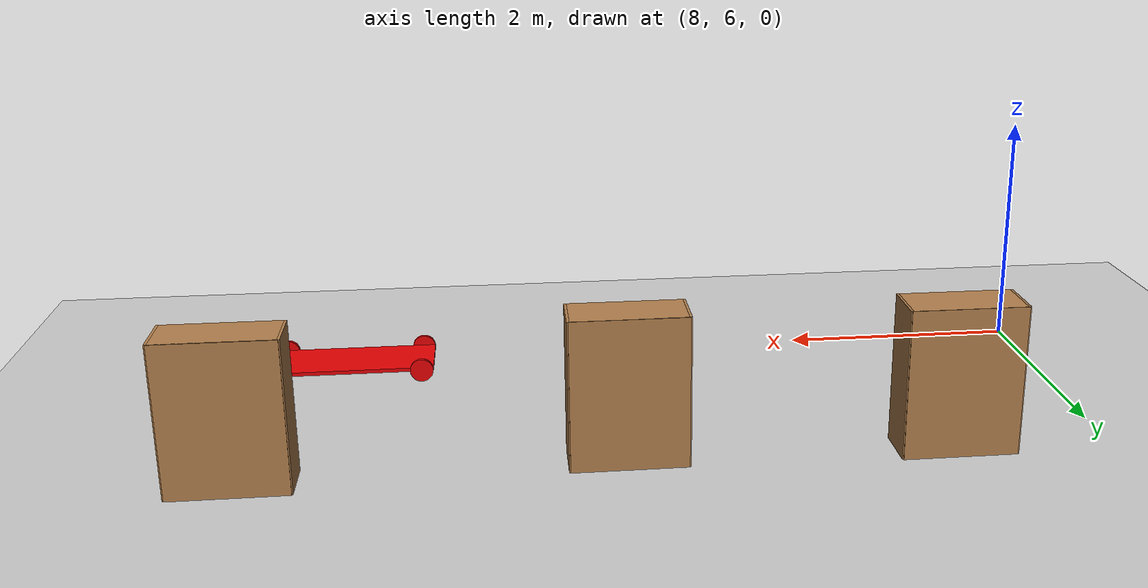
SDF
<sdf version="1.6">
 <world name="default">
  <model name="ground_plane">
   <static>1</static>
   <link name="link">
    <collision name="collision">
     <geometry><plane><normal>0 0 1</normal><size>100 100</size></plane></geometry>
     <surface><friction><ode><mu>100</mu><mu2>50</mu2></ode></friction></surface>
    </collision>
    <visual name="visual">
     <cast_shadows>0</cast_shadows>
     <geometry><plane><normal>0 0 1</normal><size>100 100</size></plane></geometry>
     <material>
      <script><uri>file://media/materials/scripts/gazebo.material</uri><name>Gazebo/Grey</name></script>
     </material>
    </visual>
   </link>
  </model>
  <model name="cart_0">
   <link name="link_0">
    <pose>0.002043 -1e-06 0 0 -0 0</pose>
    <inertial>
     <mass>0.0253075</mass>
     <inertia>
      <ixx>0.00062948</ixx>
      <ixy>0</ixy>
      <ixz>0</ixz>
      <iyy>0.00421325</iyy>
      <iyz>0</iyz>
      <izz>0.00483818</izz>
     </inertia>
    </inertial>
    <visual name="visual">
     <geometry><box><size>1.41306 0.545344 0.032853</size></box></geometry>
     <material>
      <lighting>1</lighting>
      <script><uri>file://media/materials/scripts/gazebo.material</uri><name>Gazebo/Grey</name></script>
      <ambient>0.9 0.002 0 1</ambient>
      <diffuse>0.9 0.002 0.01 0.9</diffuse>
      <specular>0.01 0.01 0.01 1</specular>
      <emissive>0 0 0 1</emissive>
      <shader type="vertex"><normal_map>__default__</normal_map></shader>
     </material>
    </visual>
    <collision name="collision">
     <geometry><box><size>1.41306 0.545344 0.032853</size></box></geometry>
     <surface>
      <friction>
       <ode><mu>1</mu><mu2>1</mu2><fdir1>0 0 0</fdir1><slip1>0</slip1><slip2>0</slip2></ode>
       <torsional>
        <coefficient>1</coefficient>
        <patch_radius>0</patch_radius>
        <surface_radius>0</surface_radius>
        <use_patch_radius>1</use_patch_radius>
        <ode><slip>0</slip></ode>
       </torsional>
      </friction>
      <bounce><restitution_coefficient>0</restitution_coefficient><threshold>1e+06</threshold></bounce>
      <contact>
       <collide_without_contact>0</collide_without_contact>
       <collide_without_contact_bitmask>1</collide_without_contact_bitmask>
       <collide_bitmask>1</collide_bitmask>
       <ode>
        <soft_cfm>0</soft_cfm>
        <soft_erp>0.2</soft_erp>
        <kp>1e+13</kp>
        <kd>1</kd>
        <max_vel>0.01</max_vel>
        <min_depth>0</min_depth>
       </ode>
       <bullet>
        <split_impulse>1</split_impulse>
        <split_impulse_penetration_threshold>-0.01</split_impulse_penetration_threshold>
        <soft_cfm>0</soft_cfm>
        <soft_erp>0.2</soft_erp>
        <kp>1e+13</kp>
        <kd>1</kd>
       </bullet>
      </contact>
     </surface>
    </collision>
   </link>
   <link name="link_1">
    <pose>0.598738 -0.289052 0 -1.55276 0 0</pose>
    <inertial>
     <mass>0.00115815</mass>
     <inertia>
      <ixx>2.95396e-06</ixx>
      <ixy>0</ixy>
      <ixz>0</ixz>
      <iyy>2.95396e-06</iyy>
      <iyz>0</iyz>
      <izz>5.7496e-06</izz>
     </inertia>
    </inertial>
    <visual name="visual">
     <geometry><cylinder><radius>0.0996172</radius><length>0.0291706</length></cylinder></geometry>
     <material>
      <lighting>1</lighting>
      <script><uri>file://media/materials/scripts/gazebo.material</uri><name>Gazebo/Grey</name></script>
      <ambient>0.9 0.002 0 1</ambient>
      <diffuse>0.9 0.002 0.01 0.9</diffuse>
      <specular>0.01 0.01 0.01 1</specular>
      <emissive>0 0 0 1</emissive>
      <shader type="vertex"><normal_map>__default__</normal_map></shader>
     </material>
    </visual>
    <collision name="collision">
     <geometry><cylinder><radius>0.099617</radius><length>0.029171</length></cylinder></geometry>
     <surface>
      <friction>
       <ode><mu>1</mu><mu2>1</mu2><fdir1>0 0 0</fdir1><slip1>0</slip1><slip2>0</slip2></ode>
       <torsional>
        <coefficient>1</coefficient>
        <patch_radius>0</patch_radius>
        <surface_radius>0</surface_radius>
        <use_patch_radius>1</use_patch_radius>
        <ode><slip>0</slip></ode>
       </torsional>
      </friction>
      <bounce><restitution_coefficient>0</restitution_coefficient><threshold>1e+06</threshold></bounce>
      <contact>
       <collide_without_contact>0</collide_without_contact>
       <collide_without_contact_bitmask>1</collide_without_contact_bitmask>
       <collide_bitmask>1</collide_bitmask>
       <ode>
        <soft_cfm>0</soft_cfm>
        <soft_erp>0.2</soft_erp>
        <kp>1e+13</kp>
        <kd>1</kd>
        <max_vel>0.01</max_vel>
        <min_depth>0</min_depth>
       </ode>
       <bullet>
        <split_impulse>1</split_impulse>
        <split_impulse_penetration_threshold>-0.01</split_impulse_penetration_threshold>
        <soft_cfm>0</soft_cfm>
        <soft_erp>0.2</soft_erp>
        <kp>1e+13</kp>
        <kd>1</kd>
       </bullet>
      </contact>
     </surface>
    </collision>
   </link>
   <link name="link_1_clone">
    <pose>-0.604867 0.289051 0 -1.55276 0 0</pose>
    <inertial>
     <mass>0.00115815</mass>
     <inertia>
      <ixx>2.95396e-06</ixx>
      <ixy>0</ixy>
      <ixz>0</ixz>
      <iyy>2.95396e-06</iyy>
      <iyz>0</iyz>
      <izz>5.7496e-06</izz>
     </inertia>
    </inertial>
    <visual name="visual">
     <geometry><cylinder><radius>0.0996172</radius><length>0.0291706</length></cylinder></geometry>
     <material>
      <lighting>1</lighting>
      <script><uri>file://media/materials/scripts/gazebo.material</uri><name>Gazebo/Grey</name></script>
      <ambient>0.9 0.002 0 1</ambient>
      <diffuse>0.9 0.002 0.01 0.9</diffuse>
      <specular>0.01 0.01 0.01 1</specular>
      <emissive>0 0 0 1</emissive>
      <shader type="vertex"><normal_map>__default__</normal_map></shader>
     </material>
    </visual>
    <collision name="collision">
     <geometry><cylinder><radius>0.099617</radius><length>0.029171</length></cylinder></geometry>
     <surface>
      <friction>
       <ode><mu>1</mu><mu2>1</mu2><fdir1>0 0 0</fdir1><slip1>0</slip1><slip2>0</slip2></ode>
       <torsional>
        <coefficient>1</coefficient>
        <patch_radius>0</patch_radius>
        <surface_radius>0</surface_radius>
        <use_patch_radius>1</use_patch_radius>
        <ode><slip>0</slip></ode>
       </torsional>
      </friction>
      <bounce><restitution_coefficient>0</restitution_coefficient><threshold>1e+06</threshold></bounce>
      <contact>
       <collide_without_contact>0</collide_without_contact>
       <collide_without_contact_bitmask>1</collide_without_contact_bitmask>
       <collide_bitmask>1</collide_bitmask>
       <ode>
        <soft_cfm>0</soft_cfm>
        <soft_erp>0.2</soft_erp>
        <kp>1e+13</kp>
        <kd>1</kd>
        <max_vel>0.01</max_vel>
        <min_depth>0</min_depth>
       </ode>
       <bullet>
        <split_impulse>1</split_impulse>
        <split_impulse_penetration_threshold>-0.01</split_impulse_penetration_threshold>
        <soft_cfm>0</soft_cfm>
        <soft_erp>0.2</soft_erp>
        <kp>1e+13</kp>
        <kd>1</kd>
       </bullet>
      </contact>
     </surface>
    </collision>
   </link>
   <link name="link_1_clone_0">
    <pose>-0.604867 -0.289052 0 -1.55276 0 0</pose>
    <inertial>
     <mass>0.00115815</mass>
     <inertia>
      <ixx>2.95396e-06</ixx>
      <ixy>0</ixy>
      <ixz>0</ixz>
      <iyy>2.95396e-06</iyy>
      <iyz>0</iyz>
      <izz>5.7496e-06</izz>
     </inertia>
    </inertial>
    <visual name="visual">
     <geometry><cylinder><radius>0.0996172</radius><length>0.0291706</length></cylinder></geometry>
     <material>
      <lighting>1</lighting>
      <script><uri>file://media/materials/scripts/gazebo.material</uri><name>Gazebo/Grey</name></script>
      <ambient>0.9 0.002 0 1</ambient>
      <diffuse>0.9 0.002 0.01 0.9</diffuse>
      <specular>0.01 0.01 0.01 1</specular>
      <emissive>0 0 0 1</emissive>
      <shader type="vertex"><normal_map>__default__</normal_map></shader>
     </material>
    </visual>
    <collision name="collision">
     <geometry><cylinder><radius>0.099617</radius><length>0.029171</length></cylinder></geometry>
     <surface>
      <friction>
       <ode><mu>1</mu><mu2>1</mu2><fdir1>0 0 0</fdir1><slip1>0</slip1><slip2>0</slip2></ode>
       <torsional>
        <coefficient>1</coefficient>
        <patch_radius>0</patch_radius>
        <surface_radius>0</surface_radius>
        <use_patch_radius>1</use_patch_radius>
        <ode><slip>0</slip></ode>
       </torsional>
      </friction>
      <bounce><restitution_coefficient>0</restitution_coefficient><threshold>1e+06</threshold></bounce>
      <contact>
       <collide_without_contact>0</collide_without_contact>
       <collide_without_contact_bitmask>1</collide_without_contact_bitmask>
       <collide_bitmask>1</collide_bitmask>
       <ode>
        <soft_cfm>0</soft_cfm>
        <soft_erp>0.2</soft_erp>
        <kp>1e+13</kp>
        <kd>1</kd>
        <max_vel>0.01</max_vel>
        <min_depth>0</min_depth>
       </ode>
       <bullet>
        <split_impulse>1</split_impulse>
        <split_impulse_penetration_threshold>-0.01</split_impulse_penetration_threshold>
        <soft_cfm>0</soft_cfm>
        <soft_erp>0.2</soft_erp>
        <kp>1e+13</kp>
        <kd>1</kd>
       </bullet>
      </contact>
     </surface>
    </collision>
   </link>
   <link name="link_1_clone_1">
    <pose>0.608953 0.289051 0 -1.55276 0 0</pose>
    <inertial>
     <mass>0.00115815</mass>
     <inertia>
      <ixx>2.95396e-06</ixx>
      <ixy>0</ixy>
      <ixz>0</ixz>
      <iyy>2.95396e-06</iyy>
      <iyz>0</iyz>
      <izz>5.7496e-06</izz>
     </inertia>
    </inertial>
    <visual name="visual">
     <geometry><cylinder><radius>0.0996172</radius><length>0.0291706</length></cylinder></geometry>
     <material>
      <lighting>1</lighting>
      <script><uri>file://media/materials/scripts/gazebo.material</uri><name>Gazebo/Grey</name></script>
      <ambient>0.9 0.002 0 1</ambient>
      <diffuse>0.9 0.002 0.01 0.9</diffuse>
      <specular>0.01 0.01 0.01 1</specular>
      <emissive>0 0 0 1</emissive>
      <shader type="vertex"><normal_map>__default__</normal_map></shader>
     </material>
    </visual>
    <collision name="collision">
     <geometry><cylinder><radius>0.099617</radius><length>0.029171</length></cylinder></geometry>
     <surface>
      <friction>
       <ode><mu>1</mu><mu2>1</mu2><fdir1>0 0 0</fdir1><slip1>0</slip1><slip2>0</slip2></ode>
       <torsional>
        <coefficient>1</coefficient>
        <patch_radius>0</patch_radius>
        <surface_radius>0</surface_radius>
        <use_patch_radius>1</use_patch_radius>
        <ode><slip>0</slip></ode>
       </torsional>
      </friction>
      <bounce><restitution_coefficient>0</restitution_coefficient><threshold>1e+06</threshold></bounce>
      <contact>
       <collide_without_contact>0</collide_without_contact>
       <collide_without_contact_bitmask>1</collide_without_contact_bitmask>
       <collide_bitmask>1</collide_bitmask>
       <ode>
        <soft_cfm>0</soft_cfm>
        <soft_erp>0.2</soft_erp>
        <kp>1e+13</kp>
        <kd>1</kd>
        <max_vel>0.01</max_vel>
        <min_depth>0</min_depth>
       </ode>
       <bullet>
        <split_impulse>1</split_impulse>
        <split_impulse_penetration_threshold>-0.01</split_impulse_penetration_threshold>
        <soft_cfm>0</soft_cfm>
        <soft_erp>0.2</soft_erp>
        <kp>1e+13</kp>
        <kd>1</kd>
       </bullet>
      </contact>
     </surface>
    </collision>
   </link>
   <joint name="link_0_JOINT_0" type="revolute">
    <parent>link_0</parent>
    <child>link_1</child>
    <axis>
     <xyz>0 0 1</xyz>
     <use_parent_model_frame>0</use_parent_model_frame>
     <limit>
      <lower>-1.79769e+308</lower>
      <upper>1.79769e+308</upper>
      <effort>-1</effort>
      <velocity>-1</velocity>
     </limit>
     <dynamics>
      <spring_reference>0</spring_reference>
      <spring_stiffness>0</spring_stiffness>
      <damping>0</damping>
     </dynamics>
    </axis>
    <physics>
     <ode><limit><cfm>0</cfm><erp>0.2</erp></limit><suspension><cfm>0</cfm><erp>0.2</erp></suspension></ode>
    </physics>
   </joint>
   <joint name="link_0_JOINT_1" type="revolute">
    <parent>link_0</parent>
    <child>link_1_clone_1</child>
    <axis>
     <xyz>0 0 1</xyz>
     <use_parent_model_frame>0</use_parent_model_frame>
     <limit>
      <lower>-1.79769e+308</lower>
      <upper>1.79769e+308</upper>
      <effort>-1</effort>
      <velocity>-1</velocity>
     </limit>
     <dynamics>
      <spring_reference>0</spring_reference>
      <spring_stiffness>0</spring_stiffness>
      <damping>0</damping>
     </dynamics>
    </axis>
    <physics>
     <ode><limit><cfm>0</cfm><erp>0.2</erp></limit><suspension><cfm>0</cfm><erp>0.2</erp></suspension></ode>
    </physics>
   </joint>
   <joint name="link_0_JOINT_2" type="revolute">
    <parent>link_0</parent>
    <child>link_1_clone_0</child>
    <axis>
     <xyz>0 0 1</xyz>
     <use_parent_model_frame>0</use_parent_model_frame>
     <limit>
      <lower>-1.79769e+308</lower>
      <upper>1.79769e+308</upper>
      <effort>-1</effort>
      <velocity>-1</velocity>
     </limit>
     <dynamics>
      <spring_reference>0</spring_reference>
      <spring_stiffness>0</spring_stiffness>
      <damping>0</damping>
     </dynamics>
    </axis>
    <physics>
     <ode><limit><cfm>0</cfm><erp>0.2</erp></limit><suspension><cfm>0</cfm><erp>0.2</erp></suspension></ode>
    </physics>
   </joint>
   <joint name="link_0_JOINT_3" type="revolute">
    <parent>link_0</parent>
    <child>link_1_clone</child>
    <axis>
     <xyz>0 0 1</xyz>
     <use_parent_model_frame>0</use_parent_model_frame>
     <limit>
      <lower>-1.79769e+308</lower>
      <upper>1.79769e+308</upper>
      <effort>-1</effort>
      <velocity>-1</velocity>
     </limit>
     <dynamics>
      <spring_reference>0</spring_reference>
      <spring_stiffness>0</spring_stiffness>
      <damping>0</damping>
     </dynamics>
    </axis>
    <physics>
     <ode><limit><cfm>0</cfm><erp>0.2</erp></limit><suspension><cfm>0</cfm><erp>0.2</erp></suspension></ode>
    </physics>
   </joint>
   <static>0</static>
   <pose>14.0056 6.29999 0.099856 1.4e-05 5e-06 0.000454</pose>
  </model>
  <model name="bookshelf">
   <static>1</static>
   <link name="link">
    <inertial><mass>1</mass></inertial>
    <collision name="back">
     <pose>0 0.005 0.6 0 -0 0</pose>
     <geometry><box><size>0.9 0.01 1.2</size></box></geometry>
    </collision>
    <visual name="visual1">
     <pose>0 0.005 0.6 0 -0 0</pose>
     <geometry><box><size>0.9 0.01 1.2</size></box></geometry>
     <material>
      <script><uri>file://media/materials/scripts/gazebo.material</uri><name>Gazebo/Wood</name></script>
     </material>
    </visual>
    <collision name="left_side">
     <pose>0.45 -0.195 0.6 0 -0 0</pose>
     <geometry><box><size>0.02 0.4 1.2</size></box></geometry>
    </collision>
    <visual name="visual2">
     <pose>0.45 -0.195 0.6 0 -0 0</pose>
     <geometry><box><size>0.02 0.4 1.2</size></box></geometry>
     <material>
      <script><uri>file://media/materials/scripts/gazebo.material</uri><name>Gazebo/Wood</name></script>
     </material>
    </visual>
    <collision name="right_side">
     <pose>-0.45 -0.195 0.6 0 -0 0</pose>
     <geometry><box><size>0.02 0.4 1.2</size></box></geometry>
    </collision>
    <visual name="visual3">
     <pose>-0.45 -0.195 0.6 0 -0 0</pose>
     <geometry><box><size>0.02 0.4 1.2</size></box></geometry>
     <material>
      <script><uri>file://media/materials/scripts/gazebo.material</uri><name>Gazebo/Wood</name></script>
     </material>
    </visual>
    <collision name="bottom">
     <pose>0 -0.195 0.03 0 -0 0</pose>
     <geometry><box><size>0.88 0.4 0.06</size></box></geometry>
    </collision>
    <visual name="visual4">
     <pose>0 -0.195 0.03 0 -0 0</pose>
     <geometry><box><size>0.88 0.4 0.06</size></box></geometry>
     <material>
      <script><uri>file://media/materials/scripts/gazebo.material</uri><name>Gazebo/Wood</name></script>
     </material>
    </visual>
    <collision name="top">
     <pose>0 -0.195 1.19 0 -0 0</pose>
     <geometry><box><size>0.88 0.4 0.02</size></box></geometry>
    </collision>
    <visual name="visual5">
     <pose>0 -0.195 1.19 0 -0 0</pose>
     <geometry><box><size>0.88 0.4 0.02</size></box></geometry>
     <material>
      <script><uri>file://media/materials/scripts/gazebo.material</uri><name>Gazebo/Wood</name></script>
     </material>
    </visual>
    <collision name="low_shelf">
     <pose>0 -0.195 0.43 0 -0 0</pose>
     <geometry><box><size>0.88 0.4 0.02</size></box></geometry>
    </collision>
    <visual name="visual6">
     <pose>0 -0.195 0.43 0 -0 0</pose>
     <geometry><box><size>0.88 0.4 0.02</size></box></geometry>
     <material>
      <script><uri>file://media/materials/scripts/gazebo.material</uri><name>Gazebo/Wood</name></script>
     </material>
    </visual>
    <collision name="high_shelf">
     <pose>0 -0.195 0.8 0 -0 0</pose>
     <geometry><box><size>0.88 0.4 0.02</size></box></geometry>
    </collision>
    <visual name="visual7">
     <pose>0 -0.195 0.8 0 -0 0</pose>
     <geometry><box><size>0.88 0.4 0.02</size></box></geometry>
     <material>
      <script><uri>file://media/materials/scripts/gazebo.material</uri><name>Gazebo/Wood</name></script>
     </material>
    </visual>
   </link>
   <pose>14.697 8.63776 0 0 -0 0</pose>
  </model>
  <model name="bookshelf_clone">
   <static>1</static>
   <link name="link">
    <inertial><mass>1</mass></inertial>
    <collision name="back">
     <pose>0 0.005 0.6 0 -0 0</pose>
     <geometry><box><size>0.9 0.01 1.2</size></box></geometry>
    </collision>
    <visual name="visual1">
     <pose>0 0.005 0.6 0 -0 0</pose>
     <geometry><box><size>0.9 0.01 1.2</size></box></geometry>
     <material>
      <script><uri>file://media/materials/scripts/gazebo.material</uri><name>Gazebo/Wood</name></script>
     </material>
    </visual>
    <collision name="left_side">
     <pose>0.45 -0.195 0.6 0 -0 0</pose>
     <geometry><box><size>0.02 0.4 1.2</size></box></geometry>
    </collision>
    <visual name="visual2">
     <pose>0.45 -0.195 0.6 0 -0 0</pose>
     <geometry><box><size>0.02 0.4 1.2</size></box></geometry>
     <material>
      <script><uri>file://media/materials/scripts/gazebo.material</uri><name>Gazebo/Wood</name></script>
     </material>
    </visual>
    <collision name="right_side">
     <pose>-0.45 -0.195 0.6 0 -0 0</pose>
     <geometry><box><size>0.02 0.4 1.2</size></box></geometry>
    </collision>
    <visual name="visual3">
     <pose>-0.45 -0.195 0.6 0 -0 0</pose>
     <geometry><box><size>0.02 0.4 1.2</size></box></geometry>
     <material>
      <script><uri>file://media/materials/scripts/gazebo.material</uri><name>Gazebo/Wood</name></script>
     </material>
    </visual>
    <collision name="bottom">
     <pose>0 -0.195 0.03 0 -0 0</pose>
     <geometry><box><size>0.88 0.4 0.06</size></box></geometry>
    </collision>
    <visual name="visual4">
     <pose>0 -0.195 0.03 0 -0 0</pose>
     <geometry><box><size>0.88 0.4 0.06</size></box></geometry>
     <material>
      <script><uri>file://media/materials/scripts/gazebo.material</uri><name>Gazebo/Wood</name></script>
     </material>
    </visual>
    <collision name="top">
     <pose>0 -0.195 1.19 0 -0 0</pose>
     <geometry><box><size>0.88 0.4 0.02</size></box></geometry>
    </collision>
    <visual name="visual5">
     <pose>0 -0.195 1.19 0 -0 0</pose>
     <geometry><box><size>0.88 0.4 0.02</size></box></geometry>
     <material>
      <script><uri>file://media/materials/scripts/gazebo.material</uri><name>Gazebo/Wood</name></script>
     </material>
    </visual>
    <collision name="low_shelf">
     <pose>0 -0.195 0.43 0 -0 0</pose>
     <geometry><box><size>0.88 0.4 0.02</size></box></geometry>
    </collision>
    <visual name="visual6">
     <pose>0 -0.195 0.43 0 -0 0</pose>
     <geometry><box><size>0.88 0.4 0.02</size></box></geometry>
     <material>
      <script><uri>file://media/materials/scripts/gazebo.material</uri><name>Gazebo/Wood</name></script>
     </material>
    </visual>
    <collision name="high_shelf">
     <pose>0 -0.195 0.8 0 -0 0</pose>
     <geometry><box><size>0.88 0.4 0.02</size></box></geometry>
    </collision>
    <visual name="visual7">
     <pose>0 -0.195 0.8 0 -0 0</pose>
     <geometry><box><size>0.88 0.4 0.02</size></box></geometry>
     <material>
      <script><uri>file://media/materials/scripts/gazebo.material</uri><name>Gazebo/Wood</name></script>
     </material>
    </visual>
   </link>
   <pose>11.7736 8.51427 0 0 -0 0</pose>
  </model>
  <model name="bookshelf_clone_0">
   <static>1</static>
   <link name="link">
    <inertial><mass>1</mass></inertial>
    <collision name="back">
     <pose>0 0.005 0.6 0 -0 0</pose>
     <geometry><box><size>0.9 0.01 1.2</size></box></geometry>
    </collision>
    <visual name="visual1">
     <pose>0 0.005 0.6 0 -0 0</pose>
     <geometry><box><size>0.9 0.01 1.2</size></box></geometry>
     <material>
      <script><uri>file://media/materials/scripts/gazebo.material</uri><name>Gazebo/Wood</name></script>
     </material>
    </visual>
    <collision name="left_side">
     <pose>0.45 -0.195 0.6 0 -0 0</pose>
     <geometry><box><size>0.02 0.4 1.2</size></box></geometry>
    </collision>
    <visual name="visual2">
     <pose>0.45 -0.195 0.6 0 -0 0</pose>
     <geometry><box><size>0.02 0.4 1.2</size></box></geometry>
     <material>
      <script><uri>file://media/materials/scripts/gazebo.material</uri><name>Gazebo/Wood</name></script>
     </material>
    </visual>
    <collision name="right_side">
     <pose>-0.45 -0.195 0.6 0 -0 0</pose>
     <geometry><box><size>0.02 0.4 1.2</size></box></geometry>
    </collision>
    <visual name="visual3">
     <pose>-0.45 -0.195 0.6 0 -0 0</pose>
     <geometry><box><size>0.02 0.4 1.2</size></box></geometry>
     <material>
      <script><uri>file://media/materials/scripts/gazebo.material</uri><name>Gazebo/Wood</name></script>
     </material>
    </visual>
    <collision name="bottom">
     <pose>0 -0.195 0.03 0 -0 0</pose>
     <geometry><box><size>0.88 0.4 0.06</size></box></geometry>
    </collision>
    <visual name="visual4">
     <pose>0 -0.195 0.03 0 -0 0</pose>
     <geometry><box><size>0.88 0.4 0.06</size></box></geometry>
     <material>
      <script><uri>file://media/materials/scripts/gazebo.material</uri><name>Gazebo/Wood</name></script>
     </material>
    </visual>
    <collision name="top">
     <pose>0 -0.195 1.19 0 -0 0</pose>
     <geometry><box><size>0.88 0.4 0.02</size></box></geometry>
    </collision>
    <visual name="visual5">
     <pose>0 -0.195 1.19 0 -0 0</pose>
     <geometry><box><size>0.88 0.4 0.02</size></box></geometry>
     <material>
      <script><uri>file://media/materials/scripts/gazebo.material</uri><name>Gazebo/Wood</name></script>
     </material>
    </visual>
    <collision name="low_shelf">
     <pose>0 -0.195 0.43 0 -0 0</pose>
     <geometry><box><size>0.88 0.4 0.02</size></box></geometry>
    </collision>
    <visual name="visual6">
     <pose>0 -0.195 0.43 0 -0 0</pose>
     <geometry><box><size>0.88 0.4 0.02</size></box></geometry>
     <material>
      <script><uri>file://media/materials/scripts/gazebo.material</uri><name>Gazebo/Wood</name></script>
     </material>
    </visual>
    <collision name="high_shelf">
     <pose>0 -0.195 0.8 0 -0 0</pose>
     <geometry><box><size>0.88 0.4 0.02</size></box></geometry>
    </collision>
    <visual name="visual7">
     <pose>0 -0.195 0.8 0 -0 0</pose>
     <geometry><box><size>0.88 0.4 0.02</size></box></geometry>
     <material>
      <script><uri>file://media/materials/scripts/gazebo.material</uri><name>Gazebo/Wood</name></script>
     </material>
    </visual>
   </link>
   <pose>9.23803 8.57949 0 0 -0 0</pose>
  </model>
 </world>
</sdf>
